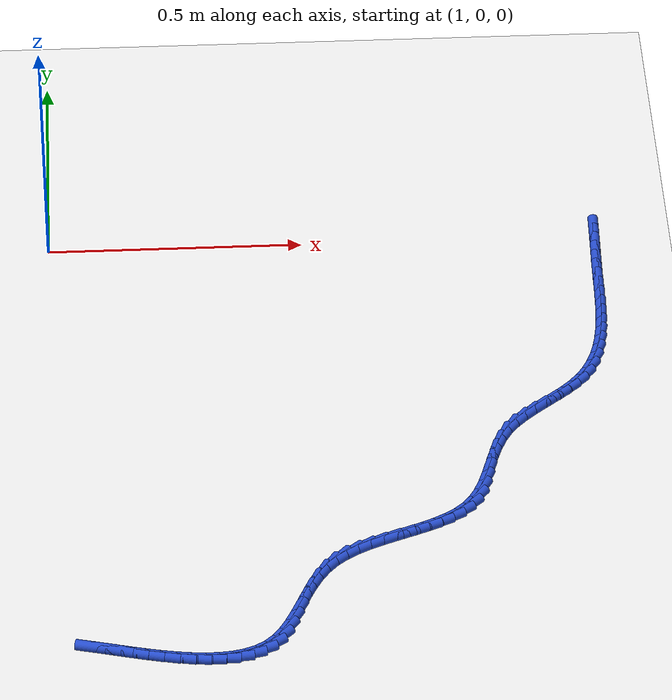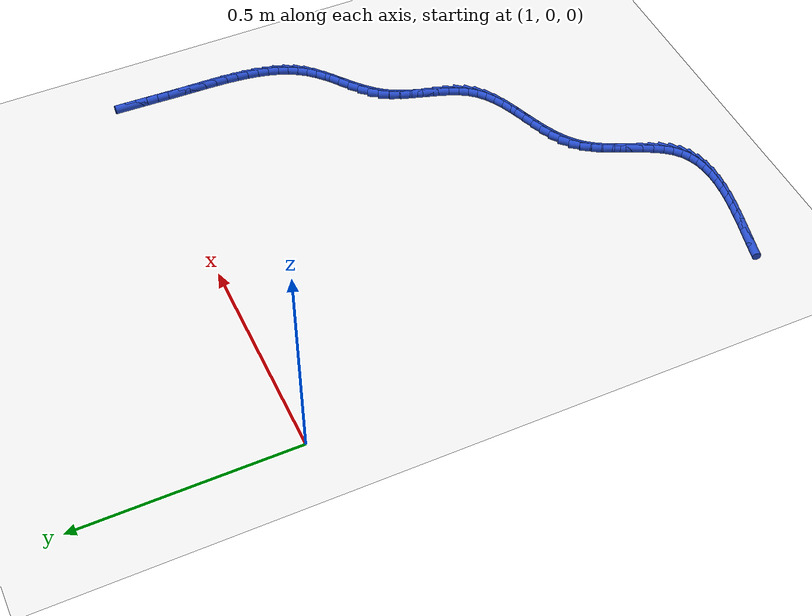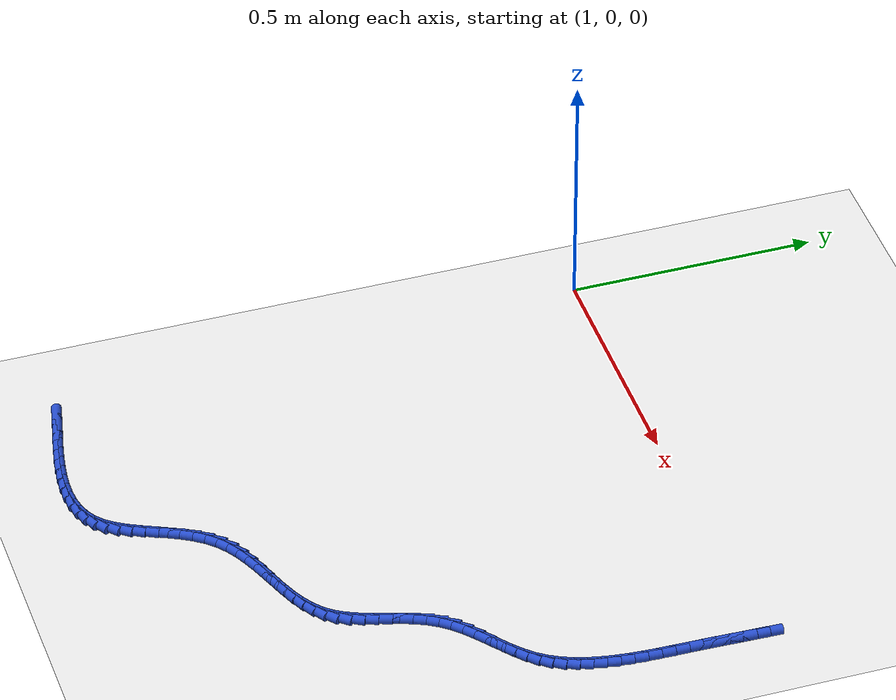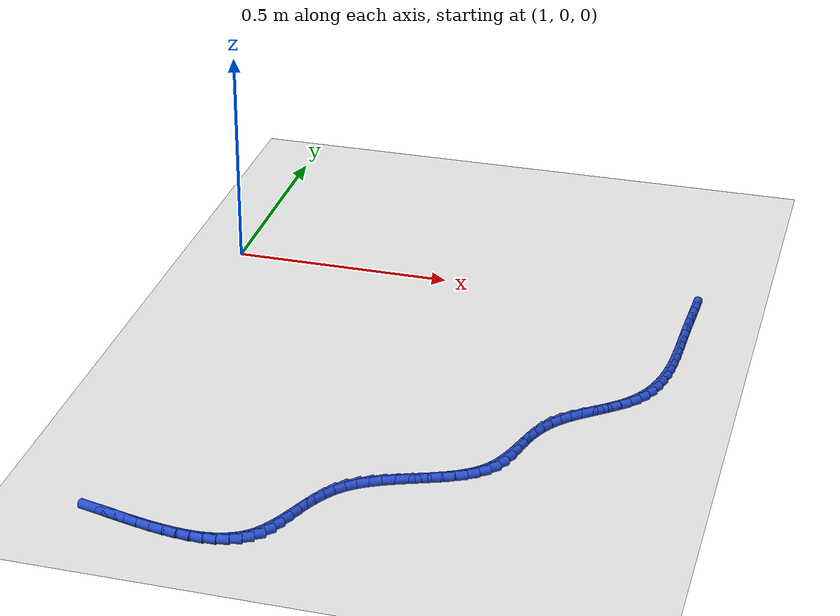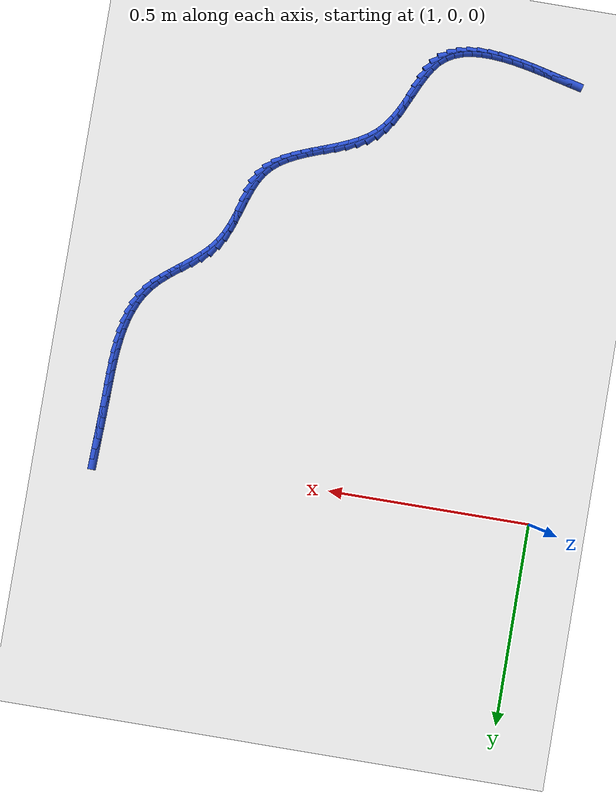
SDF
<sdf version="1.6">
 <world name="default">
  <model name="ground_plane">
   <static>1</static>
   <link name="link">
    <collision name="collision">
     <geometry><plane><normal>0 0 1</normal><size>100 100</size></plane></geometry>
     <surface><friction><ode><mu>100</mu><mu2>50</mu2></ode></friction></surface>
    </collision>
    <visual name="visual">
     <cast_shadows>0</cast_shadows>
     <geometry><plane><normal>0 0 1</normal><size>100 100</size></plane></geometry>
     <material>
      <script><uri>file://media/materials/scripts/gazebo.material</uri><name>Gazebo/WhiteGlow</name></script>
     </material>
    </visual>
   </link>
  </model>
  <model name="line">
   <link name="link_137">
    <pose>2.081100392429623 0.002508202680323885 0.01 0 1.57 1.5409207284319493</pose>
    <collision name="collision">
     <geometry><cylinder><radius>0.01</radius><length>0.08</length></cylinder></geometry>
    </collision>
    <visual name="visual">
     <material>
      <script><name>Gazebo/Blue</name><uri>file://media/materials/scripts/gazebo.material</uri></script>
     </material>
     <geometry><cylinder><radius>0.01</radius><length>0.08</length></cylinder></geometry>
    </visual>
   </link>
   <link name="link_138">
    <pose>2.0803399248062457 -0.022938697111808584 0.01 0 1.57 1.5374981622636528</pose>
    <collision name="collision">
     <geometry><cylinder><radius>0.01</radius><length>0.08</length></cylinder></geometry>
    </collision>
    <visual name="visual">
     <material>
      <script><name>Gazebo/Blue</name><uri>file://media/materials/scripts/gazebo.material</uri></script>
     </material>
     <geometry><cylinder><radius>0.01</radius><length>0.08</length></cylinder></geometry>
    </visual>
   </link>
   <link name="link_139">
    <pose>2.0794848540268904 -0.048608422246950035 0.01 0 1.57 1.5367583641286138</pose>
    <collision name="collision">
     <geometry><cylinder><radius>0.01</radius><length>0.08</length></cylinder></geometry>
    </collision>
    <visual name="visual">
     <material>
      <script><name>Gazebo/Blue</name><uri>file://media/materials/scripts/gazebo.material</uri></script>
     </material>
     <geometry><cylinder><radius>0.01</radius><length>0.08</length></cylinder></geometry>
    </visual>
   </link>
   <link name="link_140">
    <pose>2.078602319328464 -0.07452636131035659 0.01 0 1.57 1.5386268339711389</pose>
    <collision name="collision">
     <geometry><cylinder><radius>0.01</radius><length>0.08</length></cylinder></geometry>
    </collision>
    <visual name="visual">
     <material>
      <script><name>Gazebo/Blue</name><uri>file://media/materials/scripts/gazebo.material</uri></script>
     </material>
     <geometry><cylinder><radius>0.01</radius><length>0.08</length></cylinder></geometry>
    </visual>
   </link>
   <link name="link_141">
    <pose>2.077759459947877 -0.10071790288728452 0.01 0 1.57 1.5430182707861517</pose>
    <collision name="collision">
     <geometry><cylinder><radius>0.01</radius><length>0.08</length></cylinder></geometry>
    </collision>
    <visual name="visual">
     <material>
      <script><name>Gazebo/Blue</name><uri>file://media/materials/scripts/gazebo.material</uri></script>
     </material>
     <geometry><cylinder><radius>0.01</radius><length>0.08</length></cylinder></geometry>
    </visual>
   </link>
   <link name="link_142">
    <pose>2.0770234151220373 -0.1272084355629876 0.01 0 1.57 1.548437555854038</pose>
    <collision name="collision">
     <geometry><cylinder><radius>0.01</radius><length>0.08</length></cylinder></geometry>
    </collision>
    <visual name="visual">
     <material>
      <script><name>Gazebo/Blue</name><uri>file://media/materials/scripts/gazebo.material</uri></script>
     </material>
     <geometry><cylinder><radius>0.01</radius><length>0.08</length></cylinder></geometry>
    </visual>
   </link>
   <link name="link_143">
    <pose>2.07642429157868 -0.15399987703969872 0.01 0 1.57 1.547347306843558</pose>
    <collision name="collision">
     <geometry><cylinder><radius>0.01</radius><length>0.08</length></cylinder></geometry>
    </collision>
    <visual name="visual">
     <material>
      <script><name>Gazebo/Blue</name><uri>file://media/materials/scripts/gazebo.material</uri></script>
     </material>
     <geometry><cylinder><radius>0.01</radius><length>0.08</length></cylinder></geometry>
    </visual>
   </link>
   <link name="link_144">
    <pose>2.0757918195731784 -0.18096714814991596 0.01 0 1.57 1.5373133256258913</pose>
    <collision name="collision">
     <geometry><cylinder><radius>0.01</radius><length>0.08</length></cylinder></geometry>
    </collision>
    <visual name="visual">
     <material>
      <script><name>Gazebo/Blue</name><uri>file://media/materials/scripts/gazebo.material</uri></script>
     </material>
     <geometry><cylinder><radius>0.01</radius><length>0.08</length></cylinder></geometry>
    </visual>
   </link>
   <link name="link_145">
    <pose>2.07488826903121 -0.2079424139544579 0.01 0 1.57 1.518173336324609</pose>
    <collision name="collision">
     <geometry><cylinder><radius>0.01</radius><length>0.08</length></cylinder></geometry>
    </collision>
    <visual name="visual">
     <material>
      <script><name>Gazebo/Blue</name><uri>file://media/materials/scripts/gazebo.material</uri></script>
     </material>
     <geometry><cylinder><radius>0.01</radius><length>0.08</length></cylinder></geometry>
    </visual>
   </link>
   <link name="link_146">
    <pose>2.0734758588691267 -0.23475780718487288 0.01 0 1.57 1.489464540713114</pose>
    <collision name="collision">
     <geometry><cylinder><radius>0.01</radius><length>0.08</length></cylinder></geometry>
    </collision>
    <visual name="visual">
     <material>
      <script><name>Gazebo/Blue</name><uri>file://media/materials/scripts/gazebo.material</uri></script>
     </material>
     <geometry><cylinder><radius>0.01</radius><length>0.08</length></cylinder></geometry>
    </visual>
   </link>
   <link name="link_147">
    <pose>2.071316808003281 -0.2612454605727126 0.01 0 1.57 1.4504410535724601</pose>
    <collision name="collision">
     <geometry><cylinder><radius>0.01</radius><length>0.08</length></cylinder></geometry>
    </collision>
    <visual name="visual">
     <material>
      <script><name>Gazebo/Blue</name><uri>file://media/materials/scripts/gazebo.material</uri></script>
     </material>
     <geometry><cylinder><radius>0.01</radius><length>0.08</length></cylinder></geometry>
    </visual>
   </link>
   <link name="link_148">
    <pose>2.0681733353500267 -0.2872375068495257 0.01 0 1.57 1.4001117121720608</pose>
    <collision name="collision">
     <geometry><cylinder><radius>0.01</radius><length>0.08</length></cylinder></geometry>
    </collision>
    <visual name="visual">
     <material>
      <script><name>Gazebo/Blue</name><uri>file://media/materials/scripts/gazebo.material</uri></script>
     </material>
     <geometry><cylinder><radius>0.01</radius><length>0.08</length></cylinder></geometry>
    </visual>
   </link>
   <link name="link_149">
    <pose>2.0638076598257156 -0.3125660787468639 0.01 0 1.57 1.337324136135521</pose>
    <collision name="collision">
     <geometry><cylinder><radius>0.01</radius><length>0.08</length></cylinder></geometry>
    </collision>
    <visual name="visual">
     <material>
      <script><name>Gazebo/Blue</name><uri>file://media/materials/scripts/gazebo.material</uri></script>
     </material>
     <geometry><cylinder><radius>0.01</radius><length>0.08</length></cylinder></geometry>
    </visual>
   </link>
   <link name="link_150">
    <pose>2.0579820003467004 -0.33706330899627546 0.01 0 1.57 1.2609367480214264</pose>
    <collision name="collision">
     <geometry><cylinder><radius>0.01</radius><length>0.08</length></cylinder></geometry>
    </collision>
    <visual name="visual">
     <material>
      <script><name>Gazebo/Blue</name><uri>file://media/materials/scripts/gazebo.material</uri></script>
     </material>
     <geometry><cylinder><radius>0.01</radius><length>0.08</length></cylinder></geometry>
    </visual>
   </link>
   <link name="link_151">
    <pose>2.0504585758293334 -0.3605613303293114 0.01 0 1.57 1.1701279496340757</pose>
    <collision name="collision">
     <geometry><cylinder><radius>0.01</radius><length>0.08</length></cylinder></geometry>
    </collision>
    <visual name="visual">
     <material>
      <script><name>Gazebo/Blue</name><uri>file://media/materials/scripts/gazebo.material</uri></script>
     </material>
     <geometry><cylinder><radius>0.01</radius><length>0.08</length></cylinder></geometry>
    </visual>
   </link>
   <link name="link_152">
    <pose>2.040999605189968 -0.38289227547752275 0.01 0 1.57 1.0648685948729244</pose>
    <collision name="collision">
     <geometry><cylinder><radius>0.01</radius><length>0.08</length></cylinder></geometry>
    </collision>
    <visual name="visual">
     <material>
      <script><name>Gazebo/Blue</name><uri>file://media/materials/scripts/gazebo.material</uri></script>
     </material>
     <geometry><cylinder><radius>0.01</radius><length>0.08</length></cylinder></geometry>
    </visual>
   </link>
   <link name="link_153">
    <pose>2.029367307344956 -0.40388827717245773 0.01 0 1.57 0.9464926347126099</pose>
    <collision name="collision">
     <geometry><cylinder><radius>0.01</radius><length>0.08</length></cylinder></geometry>
    </collision>
    <visual name="visual">
     <material>
      <script><name>Gazebo/Blue</name><uri>file://media/materials/scripts/gazebo.material</uri></script>
     </material>
     <geometry><cylinder><radius>0.01</radius><length>0.08</length></cylinder></geometry>
    </visual>
   </link>
   <link name="link_154">
    <pose>2.0153239015231192 -0.42338146836288554 0.01 0 1.57 0.826052462890607</pose>
    <collision name="collision">
     <geometry><cylinder><radius>0.01</radius><length>0.08</length></cylinder></geometry>
    </collision>
    <visual name="visual">
     <material>
      <script><name>Gazebo/Blue</name><uri>file://media/materials/scripts/gazebo.material</uri></script>
     </material>
     <geometry><cylinder><radius>0.01</radius><length>0.08</length></cylinder></geometry>
    </visual>
   </link>
   <link name="link_155">
    <pose>1.9987919111968713 -0.44131541986994904 0.01 0 1.57 0.736236550050363</pose>
    <collision name="collision">
     <geometry><cylinder><radius>0.01</radius><length>0.08</length></cylinder></geometry>
    </collision>
    <visual name="visual">
     <material>
      <script><name>Gazebo/Blue</name><uri>file://media/materials/scripts/gazebo.material</uri></script>
     </material>
     <geometry><cylinder><radius>0.01</radius><length>0.08</length></cylinder></geometry>
    </visual>
   </link>
   <link name="link_156">
    <pose>1.9803112037241328 -0.45806285827252124 0.01 0 1.57 0.6822374590244595</pose>
    <collision name="collision">
     <geometry><cylinder><radius>0.01</radius><length>0.08</length></cylinder></geometry>
    </collision>
    <visual name="visual">
     <material>
      <script><name>Gazebo/Blue</name><uri>file://media/materials/scripts/gazebo.material</uri></script>
     </material>
     <geometry><cylinder><radius>0.01</radius><length>0.08</length></cylinder></geometry>
    </visual>
   </link>
   <link name="link_157">
    <pose>1.9605702347592395 -0.4740998035074126 0.01 0 1.57 0.6611550325399711</pose>
    <collision name="collision">
     <geometry><cylinder><radius>0.01</radius><length>0.08</length></cylinder></geometry>
    </collision>
    <visual name="visual">
     <material>
      <script><name>Gazebo/Blue</name><uri>file://media/materials/scripts/gazebo.material</uri></script>
     </material>
     <geometry><cylinder><radius>0.01</radius><length>0.08</length></cylinder></geometry>
    </visual>
   </link>
   <link name="link_158">
    <pose>1.9402574599565274 -0.48990227551143595 0.01 0 1.57 0.6713235561981565</pose>
    <collision name="collision">
     <geometry><cylinder><radius>0.01</radius><length>0.08</length></cylinder></geometry>
    </collision>
    <visual name="visual">
     <material>
      <script><name>Gazebo/Blue</name><uri>file://media/materials/scripts/gazebo.material</uri></script>
     </material>
     <geometry><cylinder><radius>0.01</radius><length>0.08</length></cylinder></geometry>
    </visual>
   </link>
   <link name="link_159">
    <pose>1.9200613349703335 -0.5059462942214022 0.01 0 1.57 0.7127944776267048</pose>
    <collision name="collision">
     <geometry><cylinder><radius>0.01</radius><length>0.08</length></cylinder></geometry>
    </collision>
    <visual name="visual">
     <material>
      <script><name>Gazebo/Blue</name><uri>file://media/materials/scripts/gazebo.material</uri></script>
     </material>
     <geometry><cylinder><radius>0.01</radius><length>0.08</length></cylinder></geometry>
    </visual>
   </link>
   <link name="link_160">
    <pose>1.9006703154549927 -0.5227078795741236 0.01 0 1.57 0.7870079056051641</pose>
    <collision name="collision">
     <geometry><cylinder><radius>0.01</radius><length>0.08</length></cylinder></geometry>
    </collision>
    <visual name="visual">
     <material>
      <script><name>Gazebo/Blue</name><uri>file://media/materials/scripts/gazebo.material</uri></script>
     </material>
     <geometry><cylinder><radius>0.01</radius><length>0.08</length></cylinder></geometry>
    </visual>
   </link>
   <link name="link_161">
    <pose>1.8827728570648419 -0.5406630515064125 0.01 0 1.57 0.8955702838924008</pose>
    <collision name="collision">
     <geometry><cylinder><radius>0.01</radius><length>0.08</length></cylinder></geometry>
    </collision>
    <visual name="visual">
     <material>
      <script><name>Gazebo/Blue</name><uri>file://media/materials/scripts/gazebo.material</uri></script>
     </material>
     <geometry><cylinder><radius>0.01</radius><length>0.08</length></cylinder></geometry>
    </visual>
   </link>
   <link name="link_162">
    <pose>1.8670574154542174 -0.5602878299550794 0.01 0 1.57 1.03166248924173</pose>
    <collision name="collision">
     <geometry><cylinder><radius>0.01</radius><length>0.08</length></cylinder></geometry>
    </collision>
    <visual name="visual">
     <material>
      <script><name>Gazebo/Blue</name><uri>file://media/materials/scripts/gazebo.material</uri></script>
     </material>
     <geometry><cylinder><radius>0.01</radius><length>0.08</length></cylinder></geometry>
    </visual>
   </link>
   <link name="link_163">
    <pose>1.8540895959618628 -0.5819639817528677 0.01 0 1.57 1.1465894000636205</pose>
    <collision name="collision">
     <geometry><cylinder><radius>0.01</radius><length>0.08</length></cylinder></geometry>
    </collision>
    <visual name="visual">
     <material>
      <script><name>Gazebo/Blue</name><uri>file://media/materials/scripts/gazebo.material</uri></script>
     </material>
     <geometry><cylinder><radius>0.01</radius><length>0.08</length></cylinder></geometry>
    </visual>
   </link>
   <link name="link_164">
    <pose>1.8435186720318706 -0.6053702464345132 0.01 0 1.57 1.220922926060216</pose>
    <collision name="collision">
     <geometry><cylinder><radius>0.01</radius><length>0.08</length></cylinder></geometry>
    </collision>
    <visual name="visual">
     <material>
      <script><name>Gazebo/Blue</name><uri>file://media/materials/scripts/gazebo.material</uri></script>
     </material>
     <geometry><cylinder><radius>0.01</radius><length>0.08</length></cylinder></geometry>
    </visual>
   </link>
   <link name="link_165">
    <pose>1.8345799077706213 -0.6298677276784269 0.01 0 1.57 1.2578271287957645</pose>
    <collision name="collision">
     <geometry><cylinder><radius>0.01</radius><length>0.08</length></cylinder></geometry>
    </collision>
    <visual name="visual">
     <material>
      <script><name>Gazebo/Blue</name><uri>file://media/materials/scripts/gazebo.material</uri></script>
     </material>
     <geometry><cylinder><radius>0.01</radius><length>0.08</length></cylinder></geometry>
    </visual>
   </link>
   <link name="link_166">
    <pose>1.8265065424912803 -0.6548159757030619 0.01 0 1.57 1.2591898595638908</pose>
    <collision name="collision">
     <geometry><cylinder><radius>0.01</radius><length>0.08</length></cylinder></geometry>
    </collision>
    <visual name="visual">
     <material>
      <script><name>Gazebo/Blue</name><uri>file://media/materials/scripts/gazebo.material</uri></script>
     </material>
     <geometry><cylinder><radius>0.01</radius><length>0.08</length></cylinder></geometry>
    </visual>
   </link>
   <link name="link_167">
    <pose>1.8185318155070127 -0.6795745407268747 0.01 0 1.57 1.224182539531419</pose>
    <collision name="collision">
     <geometry><cylinder><radius>0.01</radius><length>0.08</length></cylinder></geometry>
    </collision>
    <visual name="visual">
     <material>
      <script><name>Gazebo/Blue</name><uri>file://media/materials/scripts/gazebo.material</uri></script>
     </material>
     <geometry><cylinder><radius>0.01</radius><length>0.08</length></cylinder></geometry>
    </visual>
   </link>
   <link name="link_168">
    <pose>1.809888966130985 -0.7035029729683187 0.01 0 1.57 1.1489908231745165</pose>
    <collision name="collision">
     <geometry><cylinder><radius>0.01</radius><length>0.08</length></cylinder></geometry>
    </collision>
    <visual name="visual">
     <material>
      <script><name>Gazebo/Blue</name><uri>file://media/materials/scripts/gazebo.material</uri></script>
     </material>
     <geometry><cylinder><radius>0.01</radius><length>0.08</length></cylinder></geometry>
    </visual>
   </link>
   <link name="link_169">
    <pose>1.7998112336763619 -0.72596082264585 0.01 0 1.57 1.0278046780082315</pose>
    <collision name="collision">
     <geometry><cylinder><radius>0.01</radius><length>0.08</length></cylinder></geometry>
    </collision>
    <visual name="visual">
     <material>
      <script><name>Gazebo/Blue</name><uri>file://media/materials/scripts/gazebo.material</uri></script>
     </material>
     <geometry><cylinder><radius>0.01</radius><length>0.08</length></cylinder></geometry>
    </visual>
   </link>
   <link name="link_170">
    <pose>1.7875318574563095 -0.746307639977922 0.01 0 1.57 0.8608608052300278</pose>
    <collision name="collision">
     <geometry><cylinder><radius>0.01</radius><length>0.08</length></cylinder></geometry>
    </collision>
    <visual name="visual">
     <material>
      <script><name>Gazebo/Blue</name><uri>file://media/materials/scripts/gazebo.material</uri></script>
     </material>
     <geometry><cylinder><radius>0.01</radius><length>0.08</length></cylinder></geometry>
    </visual>
   </link>
   <link name="link_171">
    <pose>1.772355232276049 -0.7639668589638795 0.01 0 1.57 0.6958085049279598</pose>
    <collision name="collision">
     <geometry><cylinder><radius>0.01</radius><length>0.08</length></cylinder></geometry>
    </collision>
    <visual name="visual">
     <material>
      <script><name>Gazebo/Blue</name><uri>file://media/materials/scripts/gazebo.material</uri></script>
     </material>
     <geometry><cylinder><radius>0.01</radius><length>0.08</length></cylinder></geometry>
    </visual>
   </link>
   <link name="link_172">
    <pose>1.7543245181438174 -0.7790251809489043 0.01 0 1.57 0.5650821691356839</pose>
    <collision name="collision">
     <geometry><cylinder><radius>0.01</radius><length>0.08</length></cylinder></geometry>
    </collision>
    <visual name="visual">
     <material>
      <script><name>Gazebo/Blue</name><uri>file://media/materials/scripts/gazebo.material</uri></script>
     </material>
     <geometry><cylinder><radius>0.01</radius><length>0.08</length></cylinder></geometry>
    </visual>
   </link>
   <link name="link_173">
    <pose>1.7339206179182383 -0.7919623151477257 0.01 0 1.57 0.46921561686729796</pose>
    <collision name="collision">
     <geometry><cylinder><radius>0.01</radius><length>0.08</length></cylinder></geometry>
    </collision>
    <visual name="visual">
     <material>
      <script><name>Gazebo/Blue</name><uri>file://media/materials/scripts/gazebo.material</uri></script>
     </material>
     <geometry><cylinder><radius>0.01</radius><length>0.08</length></cylinder></geometry>
    </visual>
   </link>
   <link name="link_174">
    <pose>1.7116301667264944 -0.8032631172364124 0.01 0 1.57 0.40476023218969837</pose>
    <collision name="collision">
     <geometry><cylinder><radius>0.01</radius><length>0.08</length></cylinder></geometry>
    </collision>
    <visual name="visual">
     <material>
      <script><name>Gazebo/Blue</name><uri>file://media/materials/scripts/gazebo.material</uri></script>
     </material>
     <geometry><cylinder><radius>0.01</radius><length>0.08</length></cylinder></geometry>
    </visual>
   </link>
   <link name="link_175">
    <pose>1.687939799695771 -0.8134124428910305 0.01 0 1.57 0.3678734042596493</pose>
    <collision name="collision">
     <geometry><cylinder><radius>0.01</radius><length>0.08</length></cylinder></geometry>
    </collision>
    <visual name="visual">
     <material>
      <script><name>Gazebo/Blue</name><uri>file://media/materials/scripts/gazebo.material</uri></script>
     </material>
     <geometry><cylinder><radius>0.01</radius><length>0.08</length></cylinder></geometry>
    </visual>
   </link>
   <link name="link_176">
    <pose>1.6633361519532492 -0.8228951477876483 0.01 0 1.57 0.3557753869074046</pose>
    <collision name="collision">
     <geometry><cylinder><radius>0.01</radius><length>0.08</length></cylinder></geometry>
    </collision>
    <visual name="visual">
     <material>
      <script><name>Gazebo/Blue</name><uri>file://media/materials/scripts/gazebo.material</uri></script>
     </material>
     <geometry><cylinder><radius>0.01</radius><length>0.08</length></cylinder></geometry>
    </visual>
   </link>
   <link name="link_177">
    <pose>1.6383058586261154 -0.8321960876023317 0.01 0 1.57 0.3671761857012173</pose>
    <collision name="collision">
     <geometry><cylinder><radius>0.01</radius><length>0.08</length></cylinder></geometry>
    </collision>
    <visual name="visual">
     <material>
      <script><name>Gazebo/Blue</name><uri>file://media/materials/scripts/gazebo.material</uri></script>
     </material>
     <geometry><cylinder><radius>0.01</radius><length>0.08</length></cylinder></geometry>
    </visual>
   </link>
   <link name="link_178">
    <pose>1.6133355548415513 -0.8418001180111492 0.01 0 1.57 0.40228371759812004</pose>
    <collision name="collision">
     <geometry><cylinder><radius>0.01</radius><length>0.08</length></cylinder></geometry>
    </collision>
    <visual name="visual">
     <material>
      <script><name>Gazebo/Blue</name><uri>file://media/materials/scripts/gazebo.material</uri></script>
     </material>
     <geometry><cylinder><radius>0.01</radius><length>0.08</length></cylinder></geometry>
    </visual>
   </link>
   <link name="link_179">
    <pose>1.5889118757267424 -0.8521920946901674 0.01 0 1.57 0.4626062641035818</pose>
    <collision name="collision">
     <geometry><cylinder><radius>0.01</radius><length>0.08</length></cylinder></geometry>
    </collision>
    <visual name="visual">
     <material>
      <script><name>Gazebo/Blue</name><uri>file://media/materials/scripts/gazebo.material</uri></script>
     </material>
     <geometry><cylinder><radius>0.01</radius><length>0.08</length></cylinder></geometry>
    </visual>
   </link>
   <link name="link_180">
    <pose>1.5655214564088702 -0.8638568733154538 0.01 0 1.57 0.5504486303287826</pose>
    <collision name="collision">
     <geometry><cylinder><radius>0.01</radius><length>0.08</length></cylinder></geometry>
    </collision>
    <visual name="visual">
     <material>
      <script><name>Gazebo/Blue</name><uri>file://media/materials/scripts/gazebo.material</uri></script>
     </material>
     <geometry><cylinder><radius>0.01</radius><length>0.08</length></cylinder></geometry>
    </visual>
   </link>
   <link name="link_181">
    <pose>1.5436509320151197 -0.877279309563075 0.01 0 1.57 0.6677572846362738</pose>
    <collision name="collision">
     <geometry><cylinder><radius>0.01</radius><length>0.08</length></cylinder></geometry>
    </collision>
    <visual name="visual">
     <material>
      <script><name>Gazebo/Blue</name><uri>file://media/materials/scripts/gazebo.material</uri></script>
     </material>
     <geometry><cylinder><radius>0.01</radius><length>0.08</length></cylinder></geometry>
    </visual>
   </link>
   <link name="link_182">
    <pose>1.523786937672675 -0.8929442591090987 0.01 0 1.57 0.8127481544752004</pose>
    <collision name="collision">
     <geometry><cylinder><radius>0.01</radius><length>0.08</length></cylinder></geometry>
    </collision>
    <visual name="visual">
     <material>
      <script><name>Gazebo/Blue</name><uri>file://media/materials/scripts/gazebo.material</uri></script>
     </material>
     <geometry><cylinder><radius>0.01</radius><length>0.08</length></cylinder></geometry>
    </visual>
   </link>
   <link name="link_183">
    <pose>1.506396075189657 -0.9113134013390498 0.01 0 1.57 0.9509050653306267</pose>
    <collision name="collision">
     <geometry><cylinder><radius>0.01</radius><length>0.08</length></cylinder></geometry>
    </collision>
    <visual name="visual">
     <material>
      <script><name>Gazebo/Blue</name><uri>file://media/materials/scripts/gazebo.material</uri></script>
     </material>
     <geometry><cylinder><radius>0.01</radius><length>0.08</length></cylinder></geometry>
    </visual>
   </link>
   <link name="link_184">
    <pose>1.491441377478305 -0.9322658432247787 0.01 0 1.57 1.0498810510270775</pose>
    <collision name="collision">
     <geometry><cylinder><radius>0.01</radius><length>0.08</length></cylinder></geometry>
    </collision>
    <visual name="visual">
     <material>
      <script><name>Gazebo/Blue</name><uri>file://media/materials/scripts/gazebo.material</uri></script>
     </material>
     <geometry><cylinder><radius>0.01</radius><length>0.08</length></cylinder></geometry>
    </visual>
   </link>
   <link name="link_185">
    <pose>1.4783573150316447 -0.9550692046370614 0.01 0 1.57 1.1119305773608097</pose>
    <collision name="collision">
     <geometry><cylinder><radius>0.01</radius><length>0.08</length></cylinder></geometry>
    </collision>
    <visual name="visual">
     <material>
      <script><name>Gazebo/Blue</name><uri>file://media/materials/scripts/gazebo.material</uri></script>
     </material>
     <geometry><cylinder><radius>0.01</radius><length>0.08</length></cylinder></geometry>
    </visual>
   </link>
   <link name="link_186">
    <pose>1.4665533226417742 -0.978962141964539 0.01 0 1.57 1.1405865639136457</pose>
    <collision name="collision">
     <geometry><cylinder><radius>0.01</radius><length>0.08</length></cylinder></geometry>
    </collision>
    <visual name="visual">
     <material>
      <script><name>Gazebo/Blue</name><uri>file://media/materials/scripts/gazebo.material</uri></script>
     </material>
     <geometry><cylinder><radius>0.01</radius><length>0.08</length></cylinder></geometry>
    </visual>
   </link>
   <link name="link_187">
    <pose>1.4554388351007905 -1.003183311595856 0.01 0 1.57 1.1371262957425758</pose>
    <collision name="collision">
     <geometry><cylinder><radius>0.01</radius><length>0.08</length></cylinder></geometry>
    </collision>
    <visual name="visual">
     <material>
      <script><name>Gazebo/Blue</name><uri>file://media/materials/scripts/gazebo.material</uri></script>
     </material>
     <geometry><cylinder><radius>0.01</radius><length>0.08</length></cylinder></geometry>
    </visual>
   </link>
   <link name="link_188">
    <pose>1.444423287200791 -1.0269713699196532 0.01 0 1.57 1.099727597694372</pose>
    <collision name="collision">
     <geometry><cylinder><radius>0.01</radius><length>0.08</length></cylinder></geometry>
    </collision>
    <visual name="visual">
     <material>
      <script><name>Gazebo/Blue</name><uri>file://media/materials/scripts/gazebo.material</uri></script>
     </material>
     <geometry><cylinder><radius>0.01</radius><length>0.08</length></cylinder></geometry>
    </visual>
   </link>
   <link name="link_189">
    <pose>1.432916113733873 -1.0495649733245749 0.01 0 1.57 1.0230456034422564</pose>
    <collision name="collision">
     <geometry><cylinder><radius>0.01</radius><length>0.08</length></cylinder></geometry>
    </collision>
    <visual name="visual">
     <material>
      <script><name>Gazebo/Blue</name><uri>file://media/materials/scripts/gazebo.material</uri></script>
     </material>
     <geometry><cylinder><radius>0.01</radius><length>0.08</length></cylinder></geometry>
    </visual>
   </link>
   <link name="link_190">
    <pose>1.4203267494921348 -1.070202778199262 0.01 0 1.57 0.8985923396286701</pose>
    <collision name="collision">
     <geometry><cylinder><radius>0.01</radius><length>0.08</length></cylinder></geometry>
    </collision>
    <visual name="visual">
     <material>
      <script><name>Gazebo/Blue</name><uri>file://media/materials/scripts/gazebo.material</uri></script>
     </material>
     <geometry><cylinder><radius>0.01</radius><length>0.08</length></cylinder></geometry>
    </visual>
   </link>
   <link name="link_191">
    <pose>1.406064629267672 -1.0881234409323586 0.01 0 1.57 0.7205325255039142</pose>
    <collision name="collision">
     <geometry><cylinder><radius>0.01</radius><length>0.08</length></cylinder></geometry>
    </collision>
    <visual name="visual">
     <material>
      <script><name>Gazebo/Blue</name><uri>file://media/materials/scripts/gazebo.material</uri></script>
     </material>
     <geometry><cylinder><radius>0.01</radius><length>0.08</length></cylinder></geometry>
    </visual>
   </link>
   <link name="link_192">
    <pose>1.3895703279706386 -1.1026056108255495 0.01 0 1.57 0.5253318941878329</pose>
    <collision name="collision">
     <geometry><cylinder><radius>0.01</radius><length>0.08</length></cylinder></geometry>
    </collision>
    <visual name="visual">
     <material>
      <script><name>Gazebo/Blue</name><uri>file://media/materials/scripts/gazebo.material</uri></script>
     </material>
     <geometry><cylinder><radius>0.01</radius><length>0.08</length></cylinder></geometry>
    </visual>
   </link>
   <link name="link_193">
    <pose>1.3707442007665491 -1.113518427933944 0.01 0 1.57 0.35133203707214694</pose>
    <collision name="collision">
     <geometry><cylinder><radius>0.01</radius><length>0.08</length></cylinder></geometry>
    </collision>
    <visual name="visual">
     <material>
      <script><name>Gazebo/Blue</name><uri>file://media/materials/scripts/gazebo.material</uri></script>
     </material>
     <geometry><cylinder><radius>0.01</radius><length>0.08</length></cylinder></geometry>
    </visual>
   </link>
   <link name="link_194">
    <pose>1.3498374141594718 -1.1211815754779904 0.01 0 1.57 0.20580182068705902</pose>
    <collision name="collision">
     <geometry><cylinder><radius>0.01</radius><length>0.08</length></cylinder></geometry>
    </collision>
    <visual name="visual">
     <material>
      <script><name>Gazebo/Blue</name><uri>file://media/materials/scripts/gazebo.material</uri></script>
     </material>
     <geometry><cylinder><radius>0.01</radius><length>0.08</length></cylinder></geometry>
    </visual>
   </link>
   <link name="link_195">
    <pose>1.3271099798755215 -1.1259260965000695 0.01 0 1.57 0.08857409876122457</pose>
    <collision name="collision">
     <geometry><cylinder><radius>0.01</radius><length>0.08</length></cylinder></geometry>
    </collision>
    <visual name="visual">
     <material>
      <script><name>Gazebo/Blue</name><uri>file://media/materials/scripts/gazebo.material</uri></script>
     </material>
     <geometry><cylinder><radius>0.01</radius><length>0.08</length></cylinder></geometry>
    </visual>
   </link>
   <link name="link_196">
    <pose>1.302821909640811 -1.1280830340425625 0.01 0 1.57 -0.003892437413710566</pose>
    <collision name="collision">
     <geometry><cylinder><radius>0.01</radius><length>0.08</length></cylinder></geometry>
    </collision>
    <visual name="visual">
     <material>
      <script><name>Gazebo/Blue</name><uri>file://media/materials/scripts/gazebo.material</uri></script>
     </material>
     <geometry><cylinder><radius>0.01</radius><length>0.08</length></cylinder></geometry>
    </visual>
   </link>
   <link name="link_197">
    <pose>1.2772332151814547 -1.1279834311478503 0.01 0 1.57 -0.07590170799185059</pose>
    <collision name="collision">
     <geometry><cylinder><radius>0.01</radius><length>0.08</length></cylinder></geometry>
    </collision>
    <visual name="visual">
     <material>
      <script><name>Gazebo/Blue</name><uri>file://media/materials/scripts/gazebo.material</uri></script>
     </material>
     <geometry><cylinder><radius>0.01</radius><length>0.08</length></cylinder></geometry>
    </visual>
   </link>
   <link name="link_198">
    <pose>1.2506039082235654 -1.1259583308583139 0.01 0 1.57 -0.13129314080655702</pose>
    <collision name="collision">
     <geometry><cylinder><radius>0.01</radius><length>0.08</length></cylinder></geometry>
    </collision>
    <visual name="visual">
     <material>
      <script><name>Gazebo/Blue</name><uri>file://media/materials/scripts/gazebo.material</uri></script>
     </material>
     <geometry><cylinder><radius>0.01</radius><length>0.08</length></cylinder></geometry>
    </visual>
   </link>
   <link name="link_199">
    <pose>1.2231940004932573 -1.1223387762163342 0.01 0 1.57 -0.1730764470275744</pose>
    <collision name="collision">
     <geometry><cylinder><radius>0.01</radius><length>0.08</length></cylinder></geometry>
    </collision>
    <visual name="visual">
     <material>
      <script><name>Gazebo/Blue</name><uri>file://media/materials/scripts/gazebo.material</uri></script>
     </material>
     <geometry><cylinder><radius>0.01</radius><length>0.08</length></cylinder></geometry>
    </visual>
   </link>
   <link name="link_200">
    <pose>1.1952635037166426 -1.1174558102642924 0.01 0 1.57 -0.20342936786561994</pose>
    <collision name="collision">
     <geometry><cylinder><radius>0.01</radius><length>0.08</length></cylinder></geometry>
    </collision>
    <visual name="visual">
     <material>
      <script><name>Gazebo/Blue</name><uri>file://media/materials/scripts/gazebo.material</uri></script>
     </material>
     <geometry><cylinder><radius>0.01</radius><length>0.08</length></cylinder></geometry>
    </visual>
   </link>
   <link name="link_201">
    <pose>1.1670724296198371 -1.1116404760445702 0.01 0 1.57 -0.22379594734644698</pose>
    <collision name="collision">
     <geometry><cylinder><radius>0.01</radius><length>0.08</length></cylinder></geometry>
    </collision>
    <visual name="visual">
     <material>
      <script><name>Gazebo/Blue</name><uri>file://media/materials/scripts/gazebo.material</uri></script>
     </material>
     <geometry><cylinder><radius>0.01</radius><length>0.08</length></cylinder></geometry>
    </visual>
   </link>
   <link name="link_202">
    <pose>1.1388807899289521 -1.1052238165995472 0.01 0 1.57 -0.23497671750741522</pose>
    <collision name="collision">
     <geometry><cylinder><radius>0.01</radius><length>0.08</length></cylinder></geometry>
    </collision>
    <visual name="visual">
     <material>
      <script><name>Gazebo/Blue</name><uri>file://media/materials/scripts/gazebo.material</uri></script>
     </material>
     <geometry><cylinder><radius>0.01</radius><length>0.08</length></cylinder></geometry>
    </visual>
   </link>
   <link name="link_203">
    <pose>1.1109485963701031 -1.0985368749716056 0.01 0 1.57 -0.23716978256318422</pose>
    <collision name="collision">
     <geometry><cylinder><radius>0.01</radius><length>0.08</length></cylinder></geometry>
    </collision>
    <visual name="visual">
     <material>
      <script><name>Gazebo/Blue</name><uri>file://media/materials/scripts/gazebo.material</uri></script>
     </material>
     <geometry><cylinder><radius>0.01</radius><length>0.08</length></cylinder></geometry>
    </visual>
   </link>
   <link name="link_204">
    <pose>1.0835358606694026 -1.091910694203126 0.01 0 1.57 -0.2299470040898369</pose>
    <collision name="collision">
     <geometry><cylinder><radius>0.01</radius><length>0.08</length></cylinder></geometry>
    </collision>
    <visual name="visual">
     <material>
      <script><name>Gazebo/Blue</name><uri>file://media/materials/scripts/gazebo.material</uri></script>
     </material>
     <geometry><cylinder><radius>0.01</radius><length>0.08</length></cylinder></geometry>
    </visual>
   </link>
  </model>
 </world>
</sdf>
